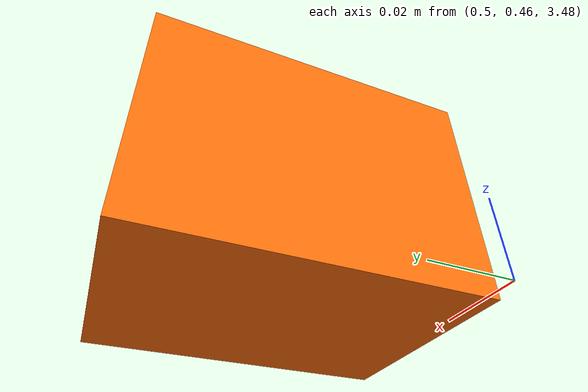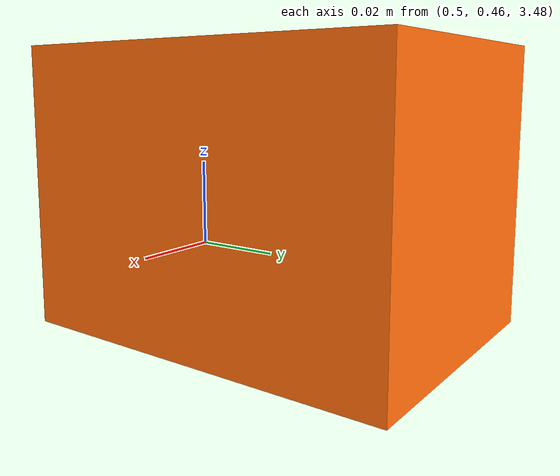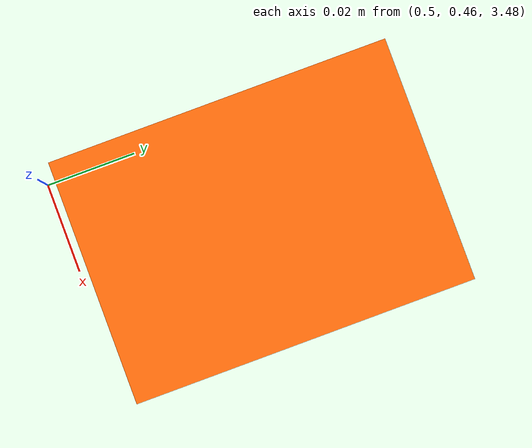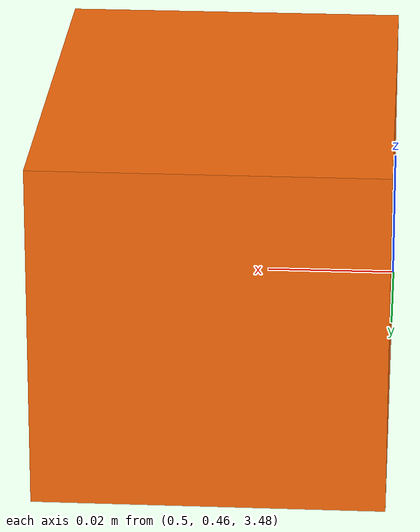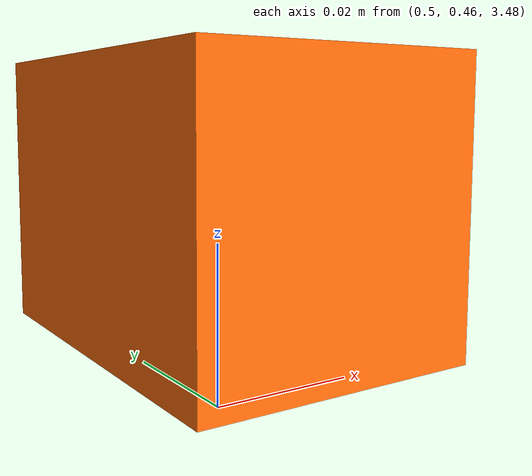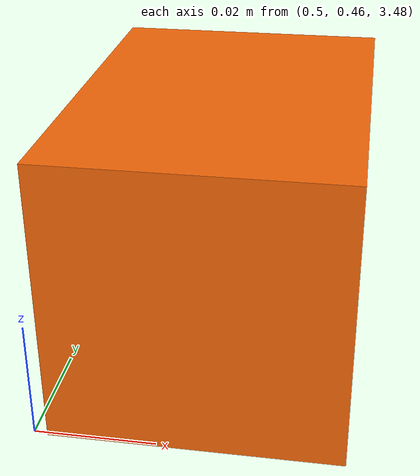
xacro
<?xml version="1.0"?>

<robot name="stereo_camera" xmlns:xacro="http://www.ros.org/wiki/xacro">

    <!-- camera -->
    <xacro:include filename="$(find ego_planner)/urdf/stereo_camera.gazebo.xacro"/>

    <xacro:property name="stereo_z" value="0.05" />
    <xacro:property name="stereo_y" value="0.07" />
    <xacro:property name="stereo_x" value="0.05" />
    <xacro:property name="object_height" value="3.5" />

    <!-- Used for fixing robot to Gazebo 'base_link' -->

    <link name="world"/>

    <!-- Base Link -->
    <link name="stereo_camera_link">
        <collision>
            <origin xyz="-${stereo_z/2} 0 0" rpy="0 0 0"/>
            <geometry>
                <box size="${stereo_x} ${stereo_y} ${stereo_z}"/>
            </geometry>
        </collision>

        <visual>
            <origin xyz="-${stereo_x/2} 0 0" rpy="0 0 0"/>
            <geometry>
                <box size="${stereo_x} ${stereo_y} ${stereo_z}"/>
            </geometry>
            <material name="orange"/>
        </visual>

        <inertial>
            <origin xyz="0 0 0" rpy="0 0 0"/>
            <mass value="1"/>
            <inertia
                ixx="1.0" ixy="0.0" ixz="0.0"
                iyy="1.0" iyz="0.0"
                izz="1.0"/>
        </inertial>
    </link>

    <joint name="sensor_joint" type="fixed">
        <parent link="world"/>
        <child link="stereo_camera_link"/>
        <origin xyz="0.5 0.5 ${object_height}" rpy="0 3.14 0" />
    </joint>

    <link name="stereo_camera2_link"/>
    <joint name="stereo_camera2_joint" type="fixed">
        <parent link="stereo_camera_link"/>
        <child link="stereo_camera2_link"/>
        <origin xyz="0 0 0" rpy="0 0 -1.57" />
    </joint>

    <material name="orange">
        <color rgba="${255/255} ${108/255} ${10/255} 1.0"/>
    </material>

    <gazebo reference="stereo_camera_link">
        <material>Gazebo/Black</material>
    </gazebo>

</robot>
